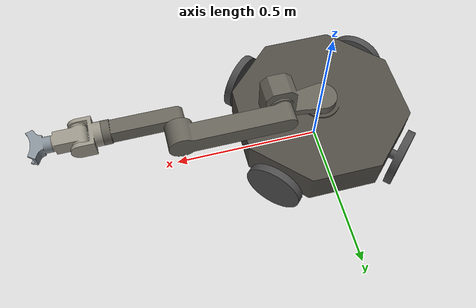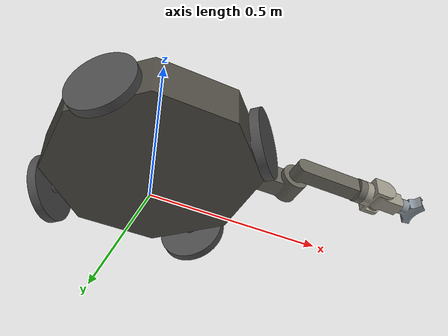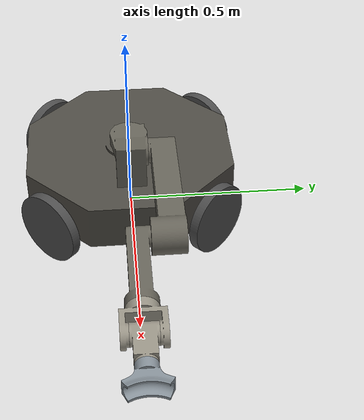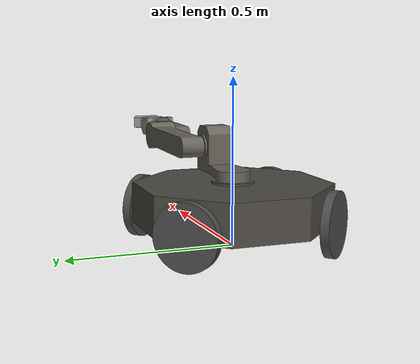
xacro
<?xml version="1.0"?>
<robot name="robot" xmlns:xacro="http://ros.org/wiki/xacro">
    <xacro:include filename="$(find robot)/discription/udrf/robot.urdf" />
    <xacro:include filename="$(find robot)/discription/udrf/chassis.xacro" />
    <xacro:include filename="$(find robot)/discription/udrf/robot.ros2_control.xacro" />

    <xacro:robot_ros2_control name="RobotController" />
</robot>

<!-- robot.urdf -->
<!-- Generated using onshape-to-robot -->
<!-- Onshape
https://cad.onshape.com/documents/4865f398df68ad124dca97b4/w/fe60e401ba5973c10da35e1e/e/11b5855565c82aa8f3341dea -->
<robot name="D:\Cool_shit\Cool_code\OnShape robot\my-robot2">
    <!-- Link chassis_base -->
    <link name="chassis_base">
        <inertial>
            <origin xyz="-0 -0 0.0601917" rpy="0 0 0" />
            <mass value="10.4326" />
            <inertia ixx="0.220472" ixy="0" ixz="0" iyy="0.220472" iyz="0" izz="0.415751" />
        </inertial>
        <!-- Part chassis_base -->
        <visual>
            <origin xyz="-0 0 0" rpy="0 -0 0" />
            <geometry>
                <mesh filename="package://robot/discription/assets/chassis_base.stl" />
            </geometry>
            <material name="chassis_base_material">
                <color rgba="0.301961 0.290196 0.262745 1" />
            </material>
        </visual>
        <collision>
            <origin xyz="-0 0 0" rpy="0 -0 0" />
            <geometry>
                <mesh filename="package://robot/discription/assets/chassis_base.stl" />
            </geometry>
        </collision>
    </link>
    <!-- Link wheel -->
    <link name="wheel">
        <inertial>
            <origin xyz="-0 0 -0.0374135" rpy="0 0 0" />
            <mass value="0.453592" />
            <inertia ixx="0.00103386" ixy="-0" ixz="0" iyy="0.00103386" iyz="0" izz="0.00200356" />
        </inertial>
        <!-- Part wheel -->
        <visual>
            <origin xyz="-0 0 -0.0508" rpy="-1.5708 0 0" />
            <geometry>
                <mesh filename="package://robot/discription/assets/wheel.stl" />
            </geometry>
            <material name="wheel_material">
                <color rgba="0.301961 0.301961 0.301961 1" />
            </material>
        </visual>
        <collision>
            <origin xyz="-0 0 -0.0508" rpy="-1.5708 0 0" />
            <geometry>
                <mesh filename="package://robot/discription/assets/wheel.stl" />
            </geometry>
        </collision>
    </link>
    <!-- Joint from chassis_base to wheel -->
    <joint name="FL_wheel" type="continuous">
        <origin xyz="0.189964 -0.189964 0.0254" rpy="-1.5708 0 0.785398" />
        <parent link="chassis_base" />
        <child link="wheel" />
        <axis xyz="0 0 1" />
        <limit effort="10" velocity="10" />
    </joint>
    <!-- Link wheel_2 -->
    <link name="wheel_2">
        <inertial>
            <origin xyz="-0 0 -0.0374135" rpy="0 0 0" />
            <mass value="0.453592" />
            <inertia ixx="0.00103386" ixy="-0" ixz="0" iyy="0.00103386" iyz="0" izz="0.00200356" />
        </inertial>
        <!-- Part wheel_2 -->
        <visual>
            <origin xyz="-0 0 -0.0508" rpy="-1.5708 -0 0" />
            <geometry>
                <mesh filename="package://robot/discription/assets/wheel.stl" />
            </geometry>
            <material name="wheel_2_material">
                <color rgba="0.301961 0.301961 0.301961 1" />
            </material>
        </visual>
        <collision>
            <origin xyz="-0 0 -0.0508" rpy="-1.5708 -0 0" />
            <geometry>
                <mesh filename="package://robot/discription/assets/wheel.stl" />
            </geometry>
        </collision>
    </link>
    <!-- Joint from chassis_base to wheel_2 -->
    <joint name="BL_wheel" type="continuous">
        <origin xyz="0.189964 0.189964 0.0254" rpy="-1.5708 -0 2.35619" />
        <parent link="chassis_base" />
        <child link="wheel_2" />
        <axis xyz="0 0 1" />
        <limit effort="10" velocity="10" />
    </joint>
    <!-- Link wheel_3 -->
    <link name="wheel_3">
        <inertial>
            <origin xyz="0 0 -0.0374135" rpy="0 0 0" />
            <mass value="0.453592" />
            <inertia ixx="0.00103386" ixy="0" ixz="-0" iyy="0.00103386" iyz="-0" izz="0.00200356" />
        </inertial>
        <!-- Part wheel_3 -->
        <visual>
            <origin xyz="0 -0 -0.0508" rpy="-1.5708 0 0" />
            <geometry>
                <mesh filename="package://robot/discription/assets/wheel.stl" />
            </geometry>
            <material name="wheel_3_material">
                <color rgba="0.301961 0.301961 0.301961 1" />
            </material>
        </visual>
        <collision>
            <origin xyz="0 -0 -0.0508" rpy="-1.5708 0 0" />
            <geometry>
                <mesh filename="package://robot/discription/assets/wheel.stl" />
            </geometry>
        </collision>
    </link>
    <!-- Joint from chassis_base to wheel_3 -->
    <joint name="BR_wheel" type="continuous">
        <origin xyz="-0.189964 0.189964 0.0254" rpy="0.785398 1.5708 0" />
        <parent link="chassis_base" />
        <child link="wheel_3" />
        <axis xyz="0 0 1" />
        <limit effort="10" velocity="10" />
    </joint>
    <!-- Link wheel_4 -->
    <link name="wheel_4">
        <inertial>
            <origin xyz="0 0 -0.0374135" rpy="0 0 0" />
            <mass value="0.453592" />
            <inertia ixx="0.00103386" ixy="0" ixz="-0" iyy="0.00103386" iyz="-0" izz="0.00200356" />
        </inertial>
        <!-- Part wheel_4 -->
        <visual>
            <origin xyz="0 0 -0.0508" rpy="-1.5708 -0 0" />
            <geometry>
                <mesh filename="package://robot/discription/assets/wheel.stl" />
            </geometry>
            <material name="wheel_4_material">
                <color rgba="0.301961 0.301961 0.301961 1" />
            </material>
        </visual>
        <collision>
            <origin xyz="0 0 -0.0508" rpy="-1.5708 -0 0" />
            <geometry>
                <mesh filename="package://robot/discription/assets/wheel.stl" />
            </geometry>
        </collision>
    </link>
    <!-- Joint from chassis_base to wheel_4 -->
    <joint name="FR_wheel" type="continuous">
        <origin xyz="-0.189964 -0.189964 0.0254" rpy="1.5708 0 2.35619" />
        <parent link="chassis_base" />
        <child link="wheel_4" />
        <axis xyz="0 0 1" />
        <limit effort="10" velocity="10" />
    </joint>
    <!-- Link sholder_link -->
    <link name="sholder_link">
        <inertial>
            <origin xyz="0.11856 0.000824426 -0.0233279" rpy="0 0 0" />
            <mass value="3.17515" />
            <inertia ixx="0.00734966" ixy="-8.85808e-05" ixz="-0.00458909" iyy="0.0191744"
                iyz="-6.10648e-05" izz="0.0153109" />
        </inertial>
        <!-- Part sholder_link -->
        <visual>
            <origin xyz="-0 0 -0.08255" rpy="0 -0 1.5708" />
            <geometry>
                <mesh filename="package://robot/discription/assets/sholder_link.stl" />
            </geometry>
            <material name="sholder_link_material">
                <color rgba="0.4 0.388235 0.34902 1" />
            </material>
        </visual>
        <collision>
            <origin xyz="-0 0 -0.08255" rpy="0 -0 1.5708" />
            <geometry>
                <mesh filename="package://robot/discription/assets/sholder_link.stl" />
            </geometry>
        </collision>
    </link>
    <!-- Link elbow_link -->
    <link name="elbow_link">
        <inertial>
            <origin xyz="0.187183 0 0.0794517" rpy="0 0 0" />
            <mass value="2.30017" />
            <inertia ixx="0.00185382" ixy="0" ixz="0.000723181" iyy="0.0338876" iyz="0"
                izz="0.0337722" />
        </inertial>
        <!-- Part elbow_link -->
        <visual>
            <origin xyz="0 0 0.0508" rpy="-1.5708 -1.5708 0" />
            <geometry>
                <mesh filename="package://robot/discription/assets/elbow_link.stl" />
            </geometry>
            <material name="elbow_link_material">
                <color rgba="0.4 0.388235 0.34902 1" />
            </material>
        </visual>
        <collision>
            <origin xyz="0 0 0.0508" rpy="-1.5708 -1.5708 0" />
            <geometry>
                <mesh filename="package://robot/discription/assets/elbow_link.stl" />
            </geometry>
        </collision>
    </link>
    <!-- Link forearm_link -->
    <link name="forearm_link">
        <inertial>
            <origin xyz="0.110324 -0 -0.031228" rpy="0 0 0" />
            <mass value="1.39979" />
            <inertia ixx="0.000678317" ixy="0" ixz="8.0609e-05" iyy="0.00841159" iyz="-0"
                izz="0.00838963" />
        </inertial>
        <!-- Part forearm_link -->
        <visual>
            <origin xyz="-0 -0 -0.00635" rpy="-1.5708 1.5708 0" />
            <geometry>
                <mesh filename="package://robot/discription/assets/forearm_link.stl" />
            </geometry>
            <material name="forearm_link_material">
                <color rgba="0.4 0.388235 0.34902 1" />
            </material>
        </visual>
        <collision>
            <origin xyz="-0 -0 -0.00635" rpy="-1.5708 1.5708 0" />
            <geometry>
                <mesh filename="package://robot/discription/assets/forearm_link.stl" />
            </geometry>
        </collision>
    </link>
    <!-- Link wrist_joint_1 -->
    <link name="wrist_joint_1">
        <inertial>
            <origin xyz="0 0 -0.0317922" rpy="0 0 0" />
            <mass value="1.00017" />
            <inertia ixx="0.00172648" ixy="0" ixz="0" iyy="0.00101253" iyz="0" izz="0.00135586" />
        </inertial>
        <!-- Part wrist_joint_1 -->
        <visual>
            <origin xyz="0 -0 -0.06985" rpy="-1.5708 0 -1.5708" />
            <geometry>
                <mesh filename="package://robot/discription/assets/wrist_joint_1.stl" />
            </geometry>
            <material name="wrist_joint_1_material">
                <color rgba="0.6 0.580392 0.529412 1" />
            </material>
        </visual>
        <collision>
            <origin xyz="0 -0 -0.06985" rpy="-1.5708 0 -1.5708" />
            <geometry>
                <mesh filename="package://robot/discription/assets/wrist_joint_1.stl" />
            </geometry>
        </collision>
    </link>
    <!-- Link wrist_joint_2 -->
    <link name="wrist_joint_2">
        <inertial>
            <origin xyz="-0.0277563 0 -0.03175" rpy="0 0 0" />
            <mass value="1.00017" />
            <inertia ixx="0.000465178" ixy="-0" ixz="0" iyy="0.00115046" iyz="-0" izz="0.00108167" />
        </inertial>
        <!-- Part wrist_joint_2 -->
        <visual>
            <origin xyz="0.06985 0 -0.03175" rpy="-1.5708 -1.5708 0" />
            <geometry>
                <mesh filename="package://robot/discription/assets/wrist_joint_2.stl" />
            </geometry>
            <material name="wrist_joint_2_material">
                <color rgba="0.6 0.580392 0.529412 1" />
            </material>
        </visual>
        <collision>
            <origin xyz="0.06985 0 -0.03175" rpy="-1.5708 -1.5708 0" />
            <geometry>
                <mesh filename="package://robot/discription/assets/wrist_joint_2.stl" />
            </geometry>
        </collision>
    </link>
    <!-- Link end_effector -->
    <link name="end_effector">
        <inertial>
            <origin xyz="-1.34881e-07 -3.82236e-07 0.114216" rpy="0 0 0" />
            <mass value="0.600103" />
            <inertia ixx="0.000462123" ixy="-3.002e-09" ixz="2.175e-09" iyy="0.000292008"
                iyz="4.68e-09" izz="0.000373244" />
        </inertial>
        <!-- Part end_effector -->
        <visual>
            <origin xyz="0 0 0.08255" rpy="-1.5708 -0 -1.5708" />
            <geometry>
                <mesh filename="package://robot/discription/assets/end_effector.stl" />
            </geometry>
            <material name="end_effector_material">
                <color rgba="0.529412 0.568627 0.6 1" />
            </material>
        </visual>
        <collision>
            <origin xyz="0 0 0.08255" rpy="-1.5708 -0 -1.5708" />
            <geometry>
                <mesh filename="package://robot/discription/assets/end_effector.stl" />
            </geometry>
        </collision>
    </link>
    <!-- Frame end_effector_pose (dummy link + fixed joint) -->
    <link name="end_effector_pose">
        <origin xyz="0 0 0" rpy="0 -0 0" />
        <inertial>
            <origin xyz="0 0 0" rpy="0 0 0" />
            <mass value="1e-9" />
            <inertia ixx="0" ixy="0" ixz="0" iyy="0" iyz="0" izz="0" />
        </inertial>
    </link>
    <joint name="end_effector_pose_frame" type="fixed">
        <origin xyz="0.0175 -0 0.226298" rpy="3.14159 -1.5708 0" />
        <parent link="end_effector" />
        <child link="end_effector_pose" />
        <axis xyz="0 0 0" />
    </joint>
    <!-- Joint from wrist_joint_2 to end_effector -->
    <joint name="wrist_yaw" type="revolute">
        <origin xyz="-0 0 -0.03175" rpy="-1.5708 0 1.5708" />
        <parent link="wrist_joint_2" />
        <child link="end_effector" />
        <axis xyz="0 0 1" />
        <limit effort="3.5" velocity="12.57" lower="-4.71239" upper="4.71239" />
    </joint>
    <!-- Joint from wrist_joint_1 to wrist_joint_2 -->
    <joint name="wrist_pitch" type="revolute">
        <origin xyz="-0 0.03175 0" rpy="-1.5708 1.5708 0" />
        <parent link="wrist_joint_1" />
        <child link="wrist_joint_2" />
        <axis xyz="0 0 1" />
        <limit effort="3.5" velocity="12.57" lower="-1.98968" upper="1.98968" />
    </joint>
    <!-- Joint from forearm_link to wrist_joint_1 -->
    <joint name="forearm_twist" type="revolute">
        <origin xyz="0.29845 -0 -0.03175" rpy="1.5708 0 1.5708" />
        <parent link="forearm_link" />
        <child link="wrist_joint_1" />
        <axis xyz="0 0 1" />
        <limit effort="3.5" velocity="12.57" lower="-4.71239" upper="4.71239" />
    </joint>
    <!-- Joint from elbow_link to forearm_link -->
    <joint name="elbow" type="revolute">
        <origin xyz="0.3302 0 0.03175" rpy="0 0 0" />
        <parent link="elbow_link" />
        <child link="forearm_link" />
        <axis xyz="0 0 1" />
        <limit effort="14" velocity="3.77" lower="-2.79253" upper="2.79253" />
    </joint>
    <!-- Joint from sholder_link to elbow_link -->
    <joint name="shoulder" type="revolute">
        <origin xyz="0.1524 -0 0" rpy="-1.5708 0 0" />
        <parent link="sholder_link" />
        <child link="elbow_link" />
        <axis xyz="0 0 1" />
        <limit effort="30" velocity="10.47" lower="-3.23438" upper="0.415388" />
    </joint>
    <!-- Joint from chassis_base to sholder_link -->
    <joint name="yaw" type="continuous">
        <origin xyz="-0 0 0.2089" rpy="0 -0 0" />
        <parent link="chassis_base" />
        <child link="sholder_link" />
        <axis xyz="0 0 1" />
        <limit effort="3.5" velocity="10" />
    </joint>
</robot>

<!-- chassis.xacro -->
<robot xmlns:xacro="http://ros.org/wiki/xacro">

    <!-- Height of chassis_base origin above the ground; tune so wheels just touch -->
    <xacro:property name="base_height" value="0.07" />

    <xacro:macro name="dummy_inertial">
        <inertial>
            <mass value="0.01" />
            <inertia ixx="1e-4" ixy="0" ixz="0" iyy="1e-4" iyz="0" izz="1e-4" />
        </inertial>
    </xacro:macro>

    <!-- A link named "world" fixes the model to the Gazebo world -->
    <link name="world" />

    <link name="base_x_link">
        <xacro:dummy_inertial />
    </link>
    <link name="base_y_link">
        <xacro:dummy_inertial />
    </link>

    <joint name="base_x" type="prismatic">
        <parent link="world" />
        <child link="base_x_link" />
        <origin xyz="0 0 ${base_height}" rpy="0 0 0" />
        <axis xyz="1 0 0" />
        <limit lower="-10" upper="10" effort="1000" velocity="1.0" />
    </joint>

    <joint name="base_y" type="prismatic">
        <parent link="base_x_link" />
        <child link="base_y_link" />
        <axis xyz="0 1 0" />
        <limit lower="-10" upper="10" effort="1000" velocity="1.0" />
    </joint>

    <joint name="base_theta" type="continuous">
        <parent link="base_y_link" />
        <child link="chassis_base" />   <!-- root link from robot.urdf -->
        <axis xyz="0 0 1" />
        <limit effort="1000" velocity="15.0" />
    </joint>
</robot>
